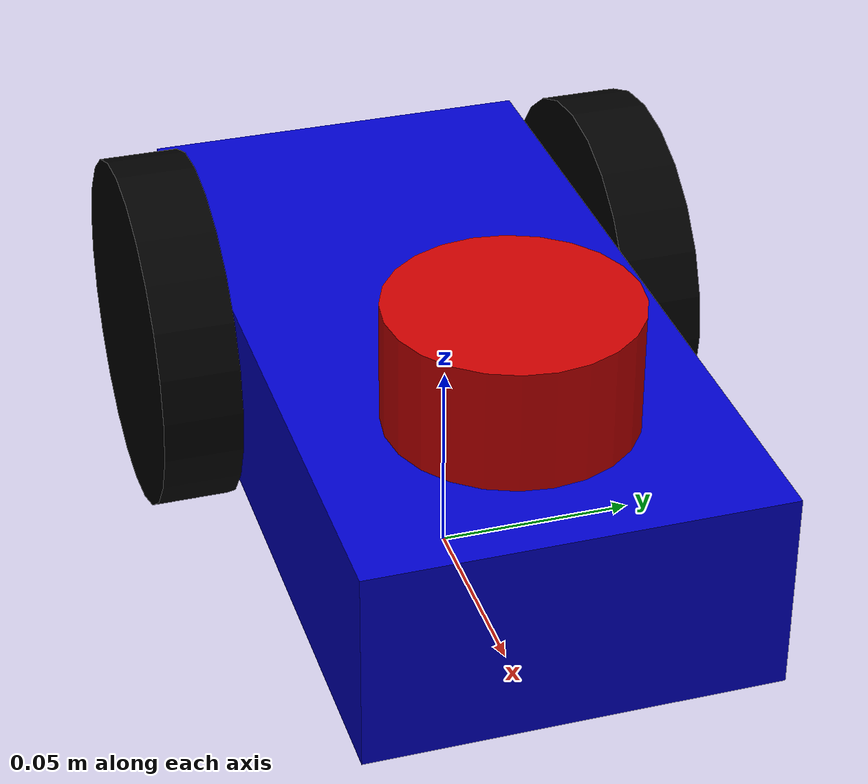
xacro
<?xml version="1.1" encoding="UTF-8"?>
<robot xmlns:xacro="http://www.ros.org/wiki/xacro" name="kb_bot">
    <xacro:include filename = "inertial_macros.xacro" />
    <xacro:include filename = "colors.xacro" />
    <xacro:include filename = "kb_bot_core.xacro" />
    <xacro:include filename = "lidar.xacro" />
    <xacro:include filename = "gazebo_control.xacro" />
</robot>

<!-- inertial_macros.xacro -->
<robot xmlns:xacro = "http://www.ros.org/wiki/xacro">
    <!-- Specify some standard inertial calculations https://en.wikipedia.org/wiki/List_of_moments_of_inertia -->
    <!-- These make use of xacro's mathematical functionality -->
     <xacro:macro name="inertial_sphere" params = "mass radius x y z roll pitch yaw">
        <inertial>
            <origin xyz="${x} ${y} ${z}" rpy="${roll} ${pitch} ${yaw}"/>
            <mass value = "${mass}" />
            <inertia ixx = "${(2/5) * mass * (radius * radius)}" ixy = "0.0" ixz = "0.0"
                    iyy = "${(2/5) * mass * (radius * radius)}" iyz = "0.0"
                    izz = "${(2/5) * mass * (radius * radius)}" />
        </inertial>
     </xacro:macro>

     <xacro:macro name="inertial_box" params = "mass length breadth height x y z roll pitch yaw">
        <inertial>
            <origin xyz="${x} ${y} ${z}" rpy="${roll} ${pitch} ${yaw}"/>
            <mass value = "${mass}" />
            <inertia ixx = "${(1/12) * mass * (breadth*breadth + height*height)}" ixy = "0.0" ixz = "0.0"
                    iyy = "${(1/12) * mass * (length*length + height*height)}" iyz = "0.0"
                    izz = "${(1/12) * mass * (length*length + breadth*breadth)}" />
        </inertial>
     </xacro:macro>

     <xacro:macro name="inertial_cylinder" params = "mass length radius x y z roll pitch yaw">
        <inertial>
            <origin xyz="${x} ${y} ${z}" rpy="${roll} ${pitch} ${yaw}"/>
            <mass value = "${mass}" />
            <inertia ixx = "${(1/12) * mass * (3*radius*radius + length*length)}" ixy = "0.0" ixz = "0.0"
                    iyy = "${(1/12) * mass * (3*radius*radius + length*length)}" iyz = "0.0"
                    izz = "${(1/2) * mass * (radius * radius)}" />
        </inertial>
     </xacro:macro>

</robot>

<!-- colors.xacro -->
<robot xmlns:xacro="http://www.ros.org/wiki/xacro">
    <material name="blue">
        <color rgba="0.0 0.0 0.8 1.0"/>
    </material>

    <material name="black">
        <color rgba="0.0 0.0 0.0 1.0"/>
    </material>

    <material name="red">
        <color rgba="0.8 0.0 0.0 1.0"/>
    </material>
</robot>

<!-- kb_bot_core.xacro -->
<robot xmlns:xacro="https://www.ros.org/wiki/xacro">
    <link name = "base_footprint"/>

    <link name = "base_link">
        <visual>
            <geometry>
                <box size = "0.2 0.1 0.05"/>
            </geometry>

            <material name="blue" />

            <origin xyz="0.0 0.0 0.0" rpy="0.0 0.0 0.0"/>
        </visual>

        <collision>
            <origin xyz="0.0 0.0 0.0" rpy="0.0 0.0 0.0"/>
            <geometry>
                <box size = "0.2 0.1 0.05"/>
            </geometry>
        </collision>
        <xacro:inertial_box mass = "0.5" length = "0.2" breadth = "0.1" height = "0.05" x = "0.0" y = "0.0" z = "0.0" roll = "0.0" pitch = "0.0" yaw = "0.0" />
    </link>

    <gazebo reference="base_link">
        <material>Gazebo/Blue</material>
    </gazebo>

    <joint name="base_joint" type="fixed">
        <parent link="base_footprint"/>
        <child link="base_link"/>
        <origin xyz="0.0 0.0 0.045"/>
    </joint>

    <link name="left_wheel">
        <visual>
            <geometry>
                <cylinder radius="0.045" length="0.02"/>
            </geometry>

            <material name = "black" />

            <origin xyz="0.0 0.0 0.0" rpy="0.0 0.0 0.0"/>
        </visual>

        <collision>
            <origin xyz="0.0 0.0 0.0" rpy="0.0 0.0 0.0"/>
            <geometry>
                <cylinder radius="0.045" length="0.02"/>
            </geometry>
        </collision>

        <xacro:inertial_cylinder mass = "0.1" radius = "0.045" length = "0.02" x = "0.0" y = "0.0" z = "0.0" roll = "0.0" pitch = "0.0" yaw = "0.0" />

    </link>

    <joint name="left_wheel_joint" type="continuous">
        <origin xyz="-0.05 0.06 0.0" rpy="${-pi/2} 0.0 0.0"/>
        <parent link="base_link"/>
        <child link="left_wheel"/>
        <axis xyz="0 0 1"/>
        <limit lower="-3.14159265" upper="3.14159265" effort="1.0" velocity="1.0" />
    </joint>

    <gazebo reference="left_wheel">
        <material>Gazebo/Black</material>
    </gazebo>

    <link name="right_wheel">
        <visual>
            <geometry>
                <cylinder radius="0.045" length="0.02"/>
            </geometry>

            <material name = "black" />

            <origin xyz="0.0 0.0 0.0" rpy="0.0 0.0 0.0"/>
        </visual>

        <collision>
            <origin xyz="0.0 0.0 0.0" rpy="0.0 0.0 0.0"/>
            <geometry>
                <cylinder radius="0.045" length="0.02"/>
            </geometry>
        </collision>

        <xacro:inertial_cylinder mass = "0.1" radius = "0.045" length = "0.02" x = "0.0" y = "0.0" z = "0.0" roll = "0.0" pitch = "0.0" yaw = "0.0" />

    </link>

    <joint name="right_wheel_joint" type="continuous">
        <origin xyz="-0.05 -0.06 0.0" rpy="${-pi/2} 0.0 0.0"/>
        <parent link="base_link"/>
        <child link="right_wheel"/>
        <axis xyz="0 0 1"/>
        <limit lower="-3.14159265" upper="3.14159265" effort="1.0" velocity="1.0" />
    </joint>

    <gazebo reference="right_wheel">
        <material>Gazebo/Black</material>
    </gazebo>

    <link name="caster_wheel">
        <visual>
            <geometry>
                <sphere radius="0.01"/>
            </geometry>

            <material name = "black" />

            <origin xyz="0.0 0.0 0.0" rpy="0.0 0.0 0.0"/>
        </visual>

        <collision>
            <origin xyz="0.0 0.0 0.0" rpy="0.0 0.0 0.0"/>
            <geometry>
                <sphere radius="0.01"/>
            </geometry>
        </collision>
        <xacro:inertial_sphere mass = "0.01" radius = "0.01" x = "0.0" y = "0.0" z = "0.0" roll = "0.0" pitch = "0.0" yaw = "0.0" />

    </link>

    <joint name="caster_joint" type="fixed">
        <parent link="base_link"/>
        <child link="caster_wheel"/>
        <origin xyz="0.05 0.0 -0.035" rpy="0.0 0.0 0.0"/>
    </joint>

    <gazebo reference="caster_wheel">
        <material>Gazebo/Black</material>
        <mu1 value="0.001"/>
        <mu2 value="0.001"/>
    </gazebo>

</robot>

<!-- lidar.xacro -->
<robot xmlns:xacro="http://www.ros.org/wiki/xacro">
    <link name="laser_frame">
        <visual>
            <origin xyz="0.0 0.0 0.015" rpy="0.0 0.0 0.0"/>
            <geometry>
                <cylinder radius="0.03" length="0.03"/>
            </geometry>

            <material name = "red" />

        </visual>

        <collision>
            <origin xyz="0.0 0.0 0.015" rpy="0.0 0.0 0.0"/>
            <geometry>
                <cylinder radius="0.03" length="0.03"/>
            </geometry>
        </collision>

        <xacro:inertial_cylinder mass = "0.08" radius = "0.03" length = "0.03" x = "0.0" y = "0.0" z = "0.015" roll = "0.0" pitch = "0.0" yaw = "0.0" />

    </link>

    <joint name="lidar_joint" type="fixed">
        <parent link="base_link"/>
        <child link="laser_frame"/>
        <origin xyz="0.05 0.0 0.025" rpy="0.0 0.0 0.0"/>
    </joint>

    <gazebo reference = "laser_frame">
        <material>
            Gazebo/Red
        </material>
        <sensor name="laser" type="gpu_lidar">
            <always_on>1</always_on>
            <visualize>true</visualize>
            <pose>0 0 0 0 0 0</pose>
            <update_rate>10</update_rate>
            <topic>scan</topic>
            <gz_frame_id>laser_frame</gz_frame_id>
            <lidar>
                <scan>
                    <horizontal>
                        <samples>360</samples>
                        <min_angle>-3.14159265</min_angle>
                        <max_angle>3.14159265</max_angle>
                    </horizontal>
                </scan>
                <range>
                    <min>0.3</min>
                    <max>12</max>
                </range>

                <noise>
                    <!-- Use gaussian noise -->
                    <type>gaussian</type>
                    <mean>0.0</mean>
                    <stddev>0.025</stddev>
                </noise>
            </lidar>
        </sensor>
    </gazebo>
</robot>
